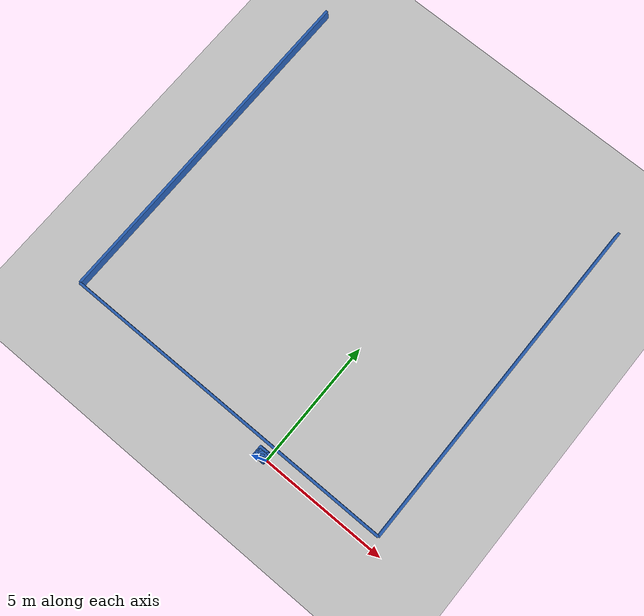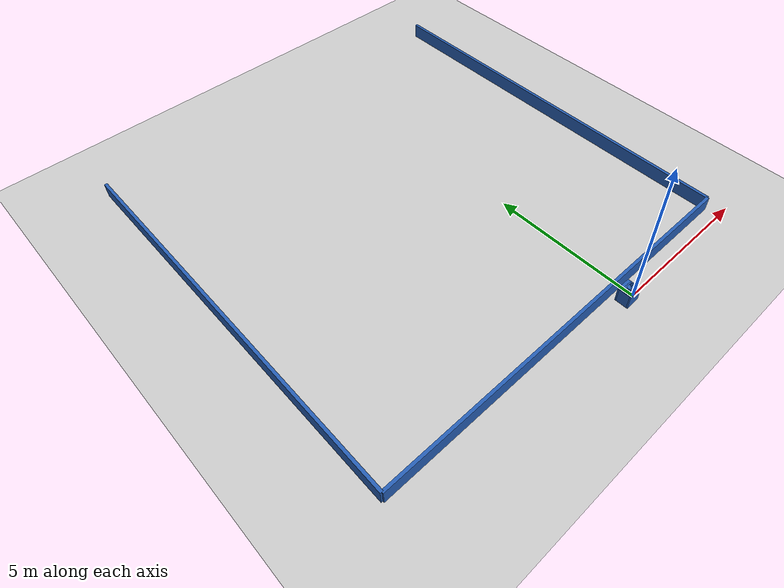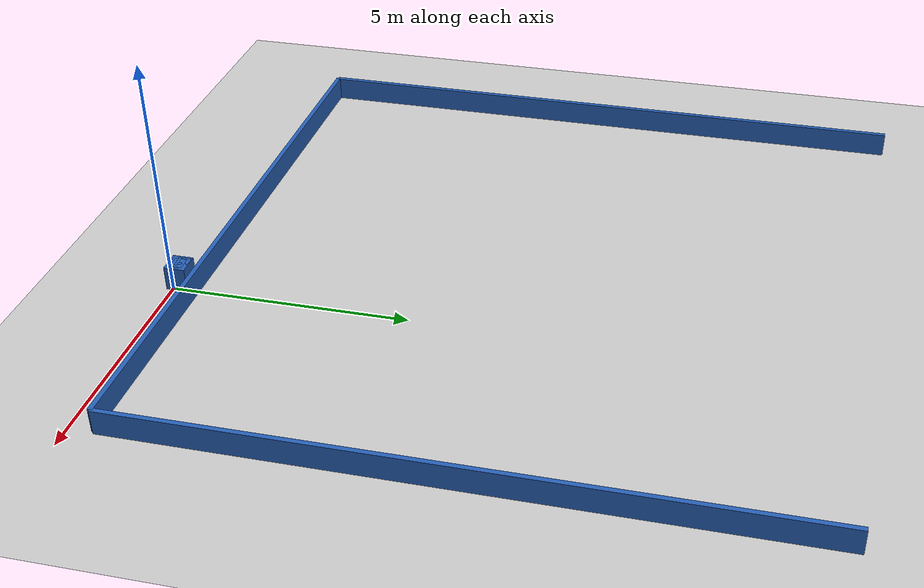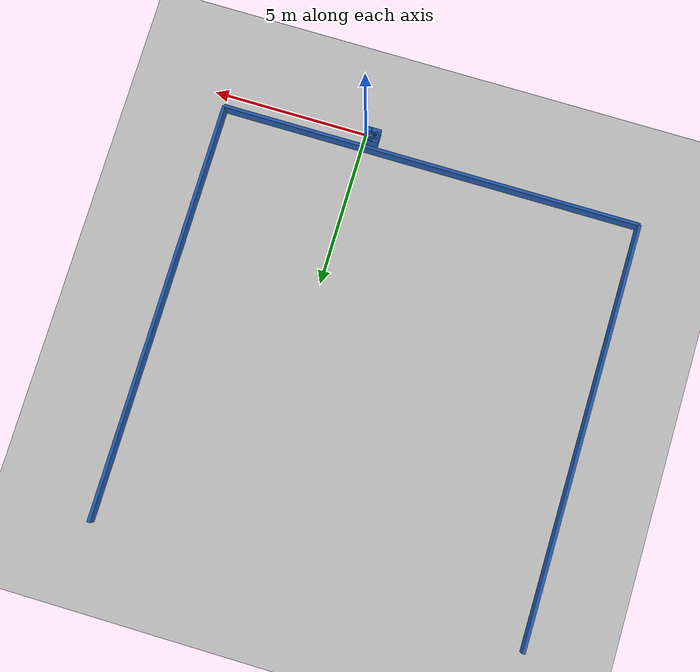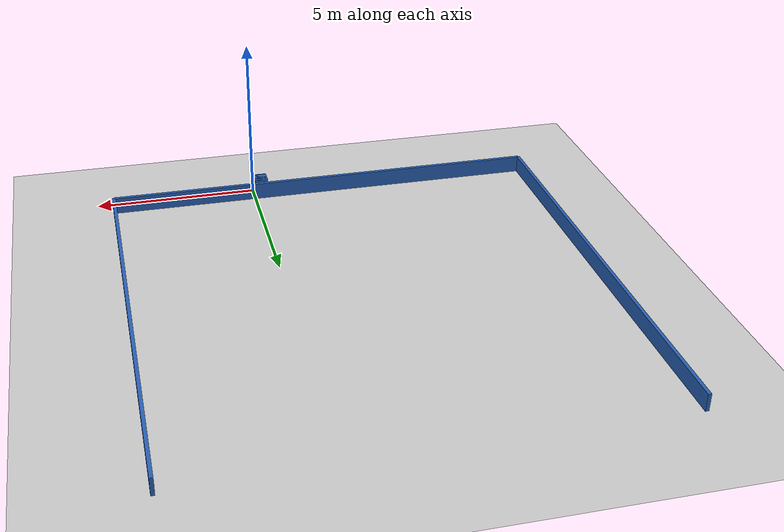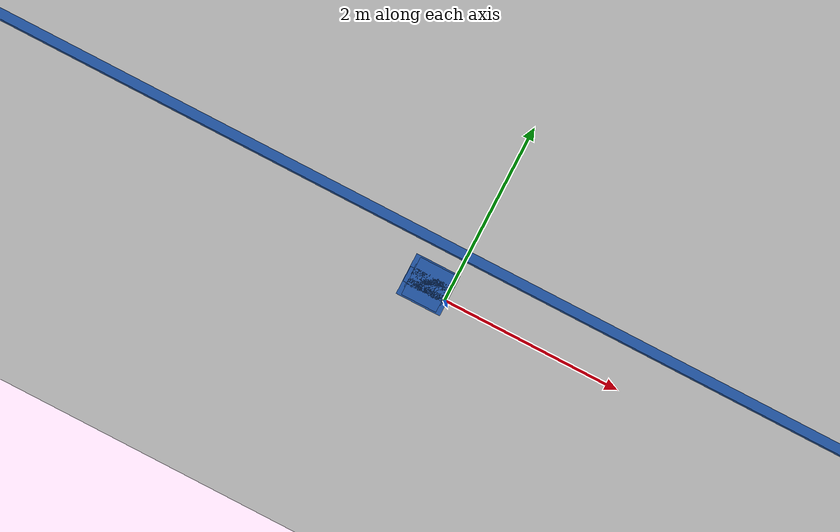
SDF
<?xml version="1.0" ?>
    <sdf version="1.5">
      <world name="default">
        <!-- A global light source -->
        <include>
          <uri>model://sun</uri>
        </include>
        <!-- A ground plane -->
        <include>
          <uri>model://ground_plane</uri>
        </include>

    <model name='libopen_space_final_T2B_80_70'>
      <static>1</static>
      <pose frame=''>-0.225000 0.075000 0.000000 0.000000 0.000000 0.000000</pose>
      <link name='link'>
        <inertial>
          <mass>1</mass>
          <inertia>
            <ixx>0.145833</ixx>
            <ixy>0</ixy>
            <ixz>0</ixz>
            <iyy>0.145833</iyy>
            <iyz>0</iyz>
            <izz>0.125</izz>
          </inertia>
        </inertial>
        <collision name='collision'>
          <geometry>
            <box>
              <size>0.38 0.41 1</size>
            </box>
          </geometry>
          <max_contacts>10</max_contacts>
          <surface>
            <contact>
              <ode/>
            </contact>
            <bounce/>
            <friction>
              <torsional>
                <ode/>
              </torsional>
              <ode/>
            </friction>
          </surface>
        </collision>
        <visual name='visual'>
          <geometry>
            <box>
              <size>0.38 0.41 1</size>
            </box>
          </geometry>
	    <material>
              <ambient>0.152000 0.379000 0.720000 1</ambient>
	      <diffuse>0.152000 0.379000 0.720000 1</diffuse>
          </material>
          <material>
            <script>
              <name>Gazebo/Grey</name>
              <uri>file://media/materials/scripts/gazebo.material</uri>
            </script>
          </material>
        </visual>
        <self_collide>0</self_collide>
        <kinematic>0</kinematic>
        <gravity>1</gravity>
      </link>
      <plugin name='libopen_space_final_T2B_80_70' filename='libopen_space_final_T2B_80_70.so'/>
    </model>

    <model name='libopen_space_final_T2B_126_41'>
      <static>1</static>
      <pose frame=''>-0.225000 0.075000 0.000000 0.000000 0.000000 0.000000</pose>
      <link name='link'>
        <inertial>
          <mass>1</mass>
          <inertia>
            <ixx>0.145833</ixx>
            <ixy>0</ixy>
            <ixz>0</ixz>
            <iyy>0.145833</iyy>
            <iyz>0</iyz>
            <izz>0.125</izz>
          </inertia>
        </inertial>
        <collision name='collision'>
          <geometry>
            <box>
              <size>0.40 0.14 1</size>
            </box>
          </geometry>
          <max_contacts>10</max_contacts>
          <surface>
            <contact>
              <ode/>
            </contact>
            <bounce/>
            <friction>
              <torsional>
                <ode/>
              </torsional>
              <ode/>
            </friction>
          </surface>
        </collision>
        <visual name='visual'>
          <geometry>
            <box>
              <size>0.40 0.14 1</size>
            </box>
          </geometry>
	    <material>
              <ambient>0.152000 0.379000 0.720000 1</ambient>
	      <diffuse>0.152000 0.379000 0.720000 1</diffuse>
          </material>
          <material>
            <script>
              <name>Gazebo/Grey</name>
              <uri>file://media/materials/scripts/gazebo.material</uri>
            </script>
          </material>
        </visual>
        <self_collide>0</self_collide>
        <kinematic>0</kinematic>
        <gravity>1</gravity>
      </link>
      <plugin name='libopen_space_final_T2B_126_41' filename='libopen_space_final_T2B_126_41.so'/>
    </model>

    <model name='libopen_space_final_T2B_106_71'>
      <static>1</static>
      <pose frame=''>-0.225000 0.075000 0.000000 0.000000 0.000000 0.000000</pose>
      <link name='link'>
        <inertial>
          <mass>1</mass>
          <inertia>
            <ixx>0.145833</ixx>
            <ixy>0</ixy>
            <ixz>0</ixz>
            <iyy>0.145833</iyy>
            <iyz>0</iyz>
            <izz>0.125</izz>
          </inertia>
        </inertial>
        <collision name='collision'>
          <geometry>
            <box>
              <size>0.21 0.18 1</size>
            </box>
          </geometry>
          <max_contacts>10</max_contacts>
          <surface>
            <contact>
              <ode/>
            </contact>
            <bounce/>
            <friction>
              <torsional>
                <ode/>
              </torsional>
              <ode/>
            </friction>
          </surface>
        </collision>
        <visual name='visual'>
          <geometry>
            <box>
              <size>0.21 0.18 1</size>
            </box>
          </geometry>
	    <material>
              <ambient>0.152000 0.379000 0.720000 1</ambient>
	      <diffuse>0.152000 0.379000 0.720000 1</diffuse>
          </material>
          <material>
            <script>
              <name>Gazebo/Grey</name>
              <uri>file://media/materials/scripts/gazebo.material</uri>
            </script>
          </material>
        </visual>
        <self_collide>0</self_collide>
        <kinematic>0</kinematic>
        <gravity>1</gravity>
      </link>
      <plugin name='libopen_space_final_T2B_106_71' filename='libopen_space_final_T2B_106_71.so'/>
    </model>

    <model name='libopen_space_final_T2B_123_13'>
      <static>1</static>
      <pose frame=''>-0.225000 0.075000 0.000000 0.000000 0.000000 0.000000</pose>
      <link name='link'>
        <inertial>
          <mass>1</mass>
          <inertia>
            <ixx>0.145833</ixx>
            <ixy>0</ixy>
            <ixz>0</ixz>
            <iyy>0.145833</iyy>
            <iyz>0</iyz>
            <izz>0.125</izz>
          </inertia>
        </inertial>
        <collision name='collision'>
          <geometry>
            <box>
              <size>0.47 0.16 1</size>
            </box>
          </geometry>
          <max_contacts>10</max_contacts>
          <surface>
            <contact>
              <ode/>
            </contact>
            <bounce/>
            <friction>
              <torsional>
                <ode/>
              </torsional>
              <ode/>
            </friction>
          </surface>
        </collision>
        <visual name='visual'>
          <geometry>
            <box>
              <size>0.47 0.16 1</size>
            </box>
          </geometry>
	    <material>
              <ambient>0.152000 0.379000 0.720000 1</ambient>
	      <diffuse>0.152000 0.379000 0.720000 1</diffuse>
          </material>
          <material>
            <script>
              <name>Gazebo/Grey</name>
              <uri>file://media/materials/scripts/gazebo.material</uri>
            </script>
          </material>
        </visual>
        <self_collide>0</self_collide>
        <kinematic>0</kinematic>
        <gravity>1</gravity>
      </link>
      <plugin name='libopen_space_final_T2B_123_13' filename='libopen_space_final_T2B_123_13.so'/>
    </model>

    <model name='libopen_space_final_T2B_118_43'>
      <static>1</static>
      <pose frame=''>-0.225000 0.075000 0.000000 0.000000 0.000000 0.000000</pose>
      <link name='link'>
        <inertial>
          <mass>1</mass>
          <inertia>
            <ixx>0.145833</ixx>
            <ixy>0</ixy>
            <ixz>0</ixz>
            <iyy>0.145833</iyy>
            <iyz>0</iyz>
            <izz>0.125</izz>
          </inertia>
        </inertial>
        <collision name='collision'>
          <geometry>
            <box>
              <size>0.31 0.26 1</size>
            </box>
          </geometry>
          <max_contacts>10</max_contacts>
          <surface>
            <contact>
              <ode/>
            </contact>
            <bounce/>
            <friction>
              <torsional>
                <ode/>
              </torsional>
              <ode/>
            </friction>
          </surface>
        </collision>
        <visual name='visual'>
          <geometry>
            <box>
              <size>0.31 0.26 1</size>
            </box>
          </geometry>
	    <material>
              <ambient>0.152000 0.379000 0.720000 1</ambient>
	      <diffuse>0.152000 0.379000 0.720000 1</diffuse>
          </material>
          <material>
            <script>
              <name>Gazebo/Grey</name>
              <uri>file://media/materials/scripts/gazebo.material</uri>
            </script>
          </material>
        </visual>
        <self_collide>0</self_collide>
        <kinematic>0</kinematic>
        <gravity>1</gravity>
      </link>
      <plugin name='libopen_space_final_T2B_118_43' filename='libopen_space_final_T2B_118_43.so'/>
    </model>

    <model name='libopen_space_final_T2B_116_74'>
      <static>1</static>
      <pose frame=''>-0.225000 0.075000 0.000000 0.000000 0.000000 0.000000</pose>
      <link name='link'>
        <inertial>
          <mass>1</mass>
          <inertia>
            <ixx>0.145833</ixx>
            <ixy>0</ixy>
            <ixz>0</ixz>
            <iyy>0.145833</iyy>
            <iyz>0</iyz>
            <izz>0.125</izz>
          </inertia>
        </inertial>
        <collision name='collision'>
          <geometry>
            <box>
              <size>0.40 0.12 1</size>
            </box>
          </geometry>
          <max_contacts>10</max_contacts>
          <surface>
            <contact>
              <ode/>
            </contact>
            <bounce/>
            <friction>
              <torsional>
                <ode/>
              </torsional>
              <ode/>
            </friction>
          </surface>
        </collision>
        <visual name='visual'>
          <geometry>
            <box>
              <size>0.40 0.12 1</size>
            </box>
          </geometry>
	    <material>
              <ambient>0.152000 0.379000 0.720000 1</ambient>
	      <diffuse>0.152000 0.379000 0.720000 1</diffuse>
          </material>
          <material>
            <script>
              <name>Gazebo/Grey</name>
              <uri>file://media/materials/scripts/gazebo.material</uri>
            </script>
          </material>
        </visual>
        <self_collide>0</self_collide>
        <kinematic>0</kinematic>
        <gravity>1</gravity>
      </link>
      <plugin name='libopen_space_final_T2B_116_74' filename='libopen_space_final_T2B_116_74.so'/>
    </model>

    <model name='libopen_space_final_T2B_105_8'>
      <static>1</static>
      <pose frame=''>-0.225000 0.075000 0.000000 0.000000 0.000000 0.000000</pose>
      <link name='link'>
        <inertial>
          <mass>1</mass>
          <inertia>
            <ixx>0.145833</ixx>
            <ixy>0</ixy>
            <ixz>0</ixz>
            <iyy>0.145833</iyy>
            <iyz>0</iyz>
            <izz>0.125</izz>
          </inertia>
        </inertial>
        <collision name='collision'>
          <geometry>
            <box>
              <size>0.30 0.19 1</size>
            </box>
          </geometry>
          <max_contacts>10</max_contacts>
          <surface>
            <contact>
              <ode/>
            </contact>
            <bounce/>
            <friction>
              <torsional>
                <ode/>
              </torsional>
              <ode/>
            </friction>
          </surface>
        </collision>
        <visual name='visual'>
          <geometry>
            <box>
              <size>0.30 0.19 1</size>
            </box>
          </geometry>
	    <material>
              <ambient>0.152000 0.379000 0.720000 1</ambient>
	      <diffuse>0.152000 0.379000 0.720000 1</diffuse>
          </material>
          <material>
            <script>
              <name>Gazebo/Grey</name>
              <uri>file://media/materials/scripts/gazebo.material</uri>
            </script>
          </material>
        </visual>
        <self_collide>0</self_collide>
        <kinematic>0</kinematic>
        <gravity>1</gravity>
      </link>
      <plugin name='libopen_space_final_T2B_105_8' filename='libopen_space_final_T2B_105_8.so'/>
    </model>

    <model name='libopen_space_final_T2B_94_79'>
      <static>1</static>
      <pose frame=''>-0.225000 0.075000 0.000000 0.000000 0.000000 0.000000</pose>
      <link name='link'>
        <inertial>
          <mass>1</mass>
          <inertia>
            <ixx>0.145833</ixx>
            <ixy>0</ixy>
            <ixz>0</ixz>
            <iyy>0.145833</iyy>
            <iyz>0</iyz>
            <izz>0.125</izz>
          </inertia>
        </inertial>
        <collision name='collision'>
          <geometry>
            <box>
              <size>0.40 0.25 1</size>
            </box>
          </geometry>
          <max_contacts>10</max_contacts>
          <surface>
            <contact>
              <ode/>
            </contact>
            <bounce/>
            <friction>
              <torsional>
                <ode/>
              </torsional>
              <ode/>
            </friction>
          </surface>
        </collision>
        <visual name='visual'>
          <geometry>
            <box>
              <size>0.40 0.25 1</size>
            </box>
          </geometry>
	    <material>
              <ambient>0.152000 0.379000 0.720000 1</ambient>
	      <diffuse>0.152000 0.379000 0.720000 1</diffuse>
          </material>
          <material>
            <script>
              <name>Gazebo/Grey</name>
              <uri>file://media/materials/scripts/gazebo.material</uri>
            </script>
          </material>
        </visual>
        <self_collide>0</self_collide>
        <kinematic>0</kinematic>
        <gravity>1</gravity>
      </link>
      <plugin name='libopen_space_final_T2B_94_79' filename='libopen_space_final_T2B_94_79.so'/>
    </model>

    <model name='libopen_space_final_T2B_134_25'>
      <static>1</static>
      <pose frame=''>-0.225000 0.075000 0.000000 0.000000 0.000000 0.000000</pose>
      <link name='link'>
        <inertial>
          <mass>1</mass>
          <inertia>
            <ixx>0.145833</ixx>
            <ixy>0</ixy>
            <ixz>0</ixz>
            <iyy>0.145833</iyy>
            <iyz>0</iyz>
            <izz>0.125</izz>
          </inertia>
        </inertial>
        <collision name='collision'>
          <geometry>
            <box>
              <size>0.48 0.44 1</size>
            </box>
          </geometry>
          <max_contacts>10</max_contacts>
          <surface>
            <contact>
              <ode/>
            </contact>
            <bounce/>
            <friction>
              <torsional>
                <ode/>
              </torsional>
              <ode/>
            </friction>
          </surface>
        </collision>
        <visual name='visual'>
          <geometry>
            <box>
              <size>0.48 0.44 1</size>
            </box>
          </geometry>
	    <material>
              <ambient>0.152000 0.379000 0.720000 1</ambient>
	      <diffuse>0.152000 0.379000 0.720000 1</diffuse>
          </material>
          <material>
            <script>
              <name>Gazebo/Grey</name>
              <uri>file://media/materials/scripts/gazebo.material</uri>
            </script>
          </material>
        </visual>
        <self_collide>0</self_collide>
        <kinematic>0</kinematic>
        <gravity>1</gravity>
      </link>
      <plugin name='libopen_space_final_T2B_134_25' filename='libopen_space_final_T2B_134_25.so'/>
    </model>

    <model name='libopen_space_final_T2B_83_23'>
      <static>1</static>
      <pose frame=''>-0.225000 0.075000 0.000000 0.000000 0.000000 0.000000</pose>
      <link name='link'>
        <inertial>
          <mass>1</mass>
          <inertia>
            <ixx>0.145833</ixx>
            <ixy>0</ixy>
            <ixz>0</ixz>
            <iyy>0.145833</iyy>
            <iyz>0</iyz>
            <izz>0.125</izz>
          </inertia>
        </inertial>
        <collision name='collision'>
          <geometry>
            <box>
              <size>0.48 0.35 1</size>
            </box>
          </geometry>
          <max_contacts>10</max_contacts>
          <surface>
            <contact>
              <ode/>
            </contact>
            <bounce/>
            <friction>
              <torsional>
                <ode/>
              </torsional>
              <ode/>
            </friction>
          </surface>
        </collision>
        <visual name='visual'>
          <geometry>
            <box>
              <size>0.48 0.35 1</size>
            </box>
          </geometry>
	    <material>
              <ambient>0.152000 0.379000 0.720000 1</ambient>
	      <diffuse>0.152000 0.379000 0.720000 1</diffuse>
          </material>
          <material>
            <script>
              <name>Gazebo/Grey</name>
              <uri>file://media/materials/scripts/gazebo.material</uri>
            </script>
          </material>
        </visual>
        <self_collide>0</self_collide>
        <kinematic>0</kinematic>
        <gravity>1</gravity>
      </link>
      <plugin name='libopen_space_final_T2B_83_23' filename='libopen_space_final_T2B_83_23.so'/>
    </model>

    <model name='libopen_space_final_T2B_71_69'>
      <static>1</static>
      <pose frame=''>-0.225000 0.075000 0.000000 0.000000 0.000000 0.000000</pose>
      <link name='link'>
        <inertial>
          <mass>1</mass>
          <inertia>
            <ixx>0.145833</ixx>
            <ixy>0</ixy>
            <ixz>0</ixz>
            <iyy>0.145833</iyy>
            <iyz>0</iyz>
            <izz>0.125</izz>
          </inertia>
        </inertial>
        <collision name='collision'>
          <geometry>
            <box>
              <size>0.40 0.18 1</size>
            </box>
          </geometry>
          <max_contacts>10</max_contacts>
          <surface>
            <contact>
              <ode/>
            </contact>
            <bounce/>
            <friction>
              <torsional>
                <ode/>
              </torsional>
              <ode/>
            </friction>
          </surface>
        </collision>
        <visual name='visual'>
          <geometry>
            <box>
              <size>0.40 0.18 1</size>
            </box>
          </geometry>
	    <material>
              <ambient>0.152000 0.379000 0.720000 1</ambient>
	      <diffuse>0.152000 0.379000 0.720000 1</diffuse>
          </material>
          <material>
            <script>
              <name>Gazebo/Grey</name>
              <uri>file://media/materials/scripts/gazebo.material</uri>
            </script>
          </material>
        </visual>
        <self_collide>0</self_collide>
        <kinematic>0</kinematic>
        <gravity>1</gravity>
      </link>
      <plugin name='libopen_space_final_T2B_71_69' filename='libopen_space_final_T2B_71_69.so'/>
    </model>

    <model name='libopen_space_final_T2B_134_32'>
      <static>1</static>
      <pose frame=''>-0.225000 0.075000 0.000000 0.000000 0.000000 0.000000</pose>
      <link name='link'>
        <inertial>
          <mass>1</mass>
          <inertia>
            <ixx>0.145833</ixx>
            <ixy>0</ixy>
            <ixz>0</ixz>
            <iyy>0.145833</iyy>
            <iyz>0</iyz>
            <izz>0.125</izz>
          </inertia>
        </inertial>
        <collision name='collision'>
          <geometry>
            <box>
              <size>0.32 0.17 1</size>
            </box>
          </geometry>
          <max_contacts>10</max_contacts>
          <surface>
            <contact>
              <ode/>
            </contact>
            <bounce/>
            <friction>
              <torsional>
                <ode/>
              </torsional>
              <ode/>
            </friction>
          </surface>
        </collision>
        <visual name='visual'>
          <geometry>
            <box>
              <size>0.32 0.17 1</size>
            </box>
          </geometry>
	    <material>
              <ambient>0.152000 0.379000 0.720000 1</ambient>
	      <diffuse>0.152000 0.379000 0.720000 1</diffuse>
          </material>
          <material>
            <script>
              <name>Gazebo/Grey</name>
              <uri>file://media/materials/scripts/gazebo.material</uri>
            </script>
          </material>
        </visual>
        <self_collide>0</self_collide>
        <kinematic>0</kinematic>
        <gravity>1</gravity>
      </link>
      <plugin name='libopen_space_final_T2B_134_32' filename='libopen_space_final_T2B_134_32.so'/>
    </model>

    <model name='libopen_space_final_T2B_129_92'>
      <static>1</static>
      <pose frame=''>-0.225000 0.075000 0.000000 0.000000 0.000000 0.000000</pose>
      <link name='link'>
        <inertial>
          <mass>1</mass>
          <inertia>
            <ixx>0.145833</ixx>
            <ixy>0</ixy>
            <ixz>0</ixz>
            <iyy>0.145833</iyy>
            <iyz>0</iyz>
            <izz>0.125</izz>
          </inertia>
        </inertial>
        <collision name='collision'>
          <geometry>
            <box>
              <size>0.10 0.17 1</size>
            </box>
          </geometry>
          <max_contacts>10</max_contacts>
          <surface>
            <contact>
              <ode/>
            </contact>
            <bounce/>
            <friction>
              <torsional>
                <ode/>
              </torsional>
              <ode/>
            </friction>
          </surface>
        </collision>
        <visual name='visual'>
          <geometry>
            <box>
              <size>0.10 0.17 1</size>
            </box>
          </geometry>
	    <material>
              <ambient>0.152000 0.379000 0.720000 1</ambient>
	      <diffuse>0.152000 0.379000 0.720000 1</diffuse>
          </material>
          <material>
            <script>
              <name>Gazebo/Grey</name>
              <uri>file://media/materials/scripts/gazebo.material</uri>
            </script>
          </material>
        </visual>
        <self_collide>0</self_collide>
        <kinematic>0</kinematic>
        <gravity>1</gravity>
      </link>
      <plugin name='libopen_space_final_T2B_129_92' filename='libopen_space_final_T2B_129_92.so'/>
    </model>

        <model name='bottom_wall'>
          <static>1</static>
          <pose frame=''>-2.25 0.5 0.000000 0.000000 0.000000 1.57079632</pose>
          <link name='link'>
            <inertial>
            <mass>1</mass>
            <inertia>
              <ixx>0.145833</ixx>
              <ixy>0</ixy>
              <ixz>0</ixz>
              <iyy>0.145833</iyy>
              <iyz>0</iyz>
              <izz>0.125</izz>
            </inertia>
            </inertial>
            <collision name='collision'>
            <geometry>
              <box>
              <size>0.1 13.5 1</size>
              </box>
            </geometry>
            <max_contacts>10</max_contacts>
            <surface>
              <contact>
              <ode/>
              </contact>
              <bounce/>
              <friction>
              <torsional>
                <ode/>
              </torsional>
              <ode/>
              </friction>
            </surface>
            </collision>
            <visual name='visual'>
            <geometry>
              <box>
              <size>0.1 13.5 1</size>
              </box>
            </geometry>
            <material>
              <ambient>0.152000 0.379000 0.720000 1</ambient>
            <diffuse>0.152000 0.379000 0.720000 1</diffuse>
            </material>
            <material>
              <script>
              <name>Gazebo/Grey</name>
              <uri>file://media/materials/scripts/gazebo.material</uri>
              </script>
            </material>
            </visual>
            <self_collide>0</self_collide>
            <kinematic>0</kinematic>
            <gravity>1</gravity>
          </link>
        </model>

        <model name='left_wall'>
          <static>1</static>
          <pose frame=''>-9 7.25 0.000000 0.000000 0.000000 0.000000</pose>
          <link name='link'>
            <inertial>
            <mass>1</mass>
            <inertia>
              <ixx>0.145833</ixx>
              <ixy>0</ixy>
              <ixz>0</ixz>
              <iyy>0.145833</iyy>
              <iyz>0</iyz>
              <izz>0.125</izz>
            </inertia>
            </inertial>
            <collision name='collision'>
            <geometry>
              <box>
              <size>0.1 13.5 1</size>
              </box>
            </geometry>
            <max_contacts>10</max_contacts>
            <surface>
              <contact>
              <ode/>
              </contact>
              <bounce/>
              <friction>
              <torsional>
                <ode/>
              </torsional>
              <ode/>
              </friction>
            </surface>
            </collision>
            <visual name='visual'>
            <geometry>
              <box>
              <size>0.1 13.5 1</size>
              </box>
            </geometry>
            <material>
              <ambient>0.152000 0.379000 0.720000 1</ambient>
            <diffuse>0.152000 0.379000 0.720000 1</diffuse>
            </material>
            <material>
              <script>
              <name>Gazebo/Grey</name>
              <uri>file://media/materials/scripts/gazebo.material</uri>
              </script>
            </material>
            </visual>
            <self_collide>0</self_collide>
            <kinematic>0</kinematic>
            <gravity>1</gravity>
          </link>
        </model>

        <model name='right_wall'>
          <static>1</static>
          <pose frame=''>4.5 7.25 0.000000 0.000000 0.000000 0.000000</pose>
          <link name='link'>
            <inertial>
            <mass>1</mass>
            <inertia>
              <ixx>0.145833</ixx>
              <ixy>0</ixy>
              <ixz>0</ixz>
              <iyy>0.145833</iyy>
              <iyz>0</iyz>
              <izz>0.125</izz>
            </inertia>
            </inertial>
            <collision name='collision'>
            <geometry>
              <box>
              <size>0.1 13.5 1</size>
              </box>
            </geometry>
            <max_contacts>10</max_contacts>
            <surface>
              <contact>
              <ode/>
              </contact>
              <bounce/>
              <friction>
              <torsional>
                <ode/>
              </torsional>
              <ode/>
              </friction>
            </surface>
            </collision>
            <visual name='visual'>
            <geometry>
              <box>
              <size>0.1 13.5 1</size>
              </box>
            </geometry>
            <material>
              <ambient>0.152000 0.379000 0.720000 1</ambient>
            <diffuse>0.152000 0.379000 0.720000 1</diffuse>
            </material>
            <material>
              <script>
              <name>Gazebo/Grey</name>
              <uri>file://media/materials/scripts/gazebo.material</uri>
              </script>
            </material>
            </visual>
            <self_collide>0</self_collide>
            <kinematic>0</kinematic>
            <gravity>1</gravity>
          </link>
        </model>

      </world>
    </sdf>"
